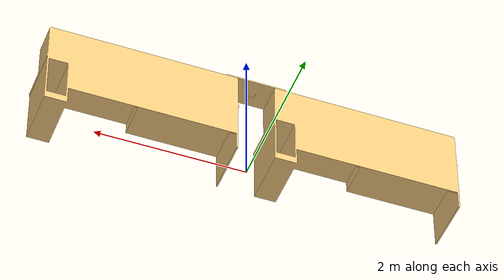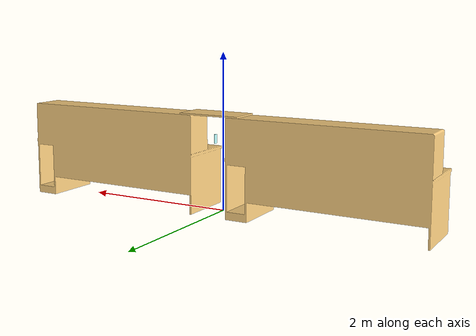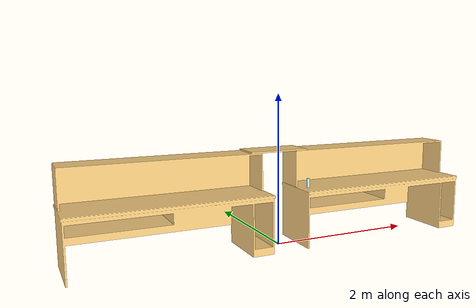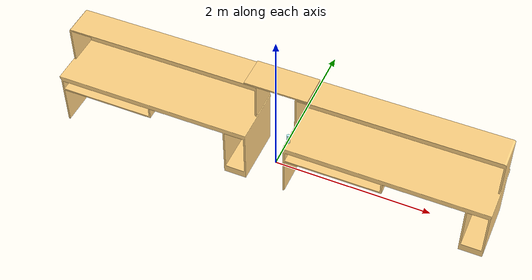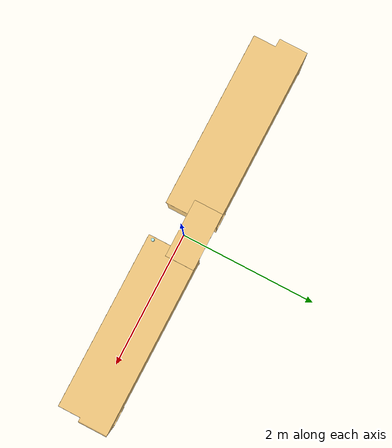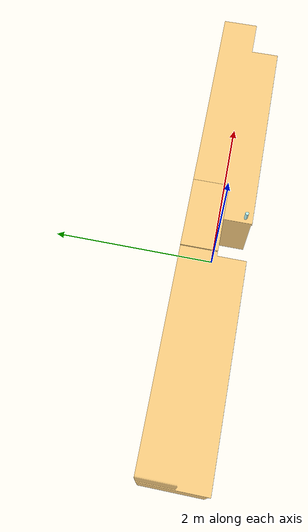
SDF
<sdf version='1.11'>
  <model name='table_bottle'>
    <joint name='table_joint' type='fixed'>
      <pose relative_to='__model__'>0 0 0 0 0 0</pose>
      <parent>world</parent>
      <child>table_top</child>
    </joint>
    <link name='table_top'>
      <pose relative_to='table_joint'>0 0 0 0 0 0</pose>
      <inertial>
        <pose>0.037556625273006503 0.1187234636742408 1.213559996214189 0 0 0</pose>
        <mass>4.3002000000000002</mass>
        <inertia>
          <ixx>0.21852720258128411</ixx>
          <ixy>0.057220156535226371</ixy>
          <ixz>0.04949839947141102</ixz>
          <iyy>0.3122479666049145</iyy>
          <iyz>-0.081760943047373025</iyz>
          <izz>0.38527938088341529</izz>
        </inertia>
      </inertial>
      <collision name='table_top_collision'>
        <pose>0 0 0 0 0 0</pose>
        <geometry>
          <mesh>
            <scale>1 1 1</scale>
            <uri>/home/maryam-mahmood/udaadbot_ws/src/daadbot_desc/meshes_lab_table/base_link.STL</uri>
          </mesh>
        </geometry>
      </collision>
      <collision name='table_top_fixed_joint_lump__bottle_link_collision_1'>
        <pose>0.28499999999999998 -0.28999999999999998 0.85999999999999999 0 0 0</pose>
        <geometry>
          <cylinder>
            <length>0.12</length>
            <radius>0.020000000000000003</radius>
          </cylinder>
        </geometry>
        <surface>
          <contact>
            <ode>
              <kp>100000</kp>
              <kd>10</kd>
              <min_depth>0.001</min_depth>
            </ode>
          </contact>
          <friction>
            <ode>
              <mu>0.80000000000000004</mu>
              <mu2>0.80000000000000004</mu2>
            </ode>
          </friction>
        </surface>
      </collision>
      <collision name='table_top_fixed_joint_lump__table_link1_collision_2'>
        <pose>0.0050000000000000001 0.17249999999999999 1.27 -1.5708 4.2351647362715017e-22 -3.1415853071795872</pose>
        <geometry>
          <mesh>
            <scale>1 1 1</scale>
            <uri>/home/maryam-mahmood/udaadbot_ws/src/daadbot_desc/meshes_lab_table/link1.STL</uri>
          </mesh>
        </geometry>
      </collision>
      <visual name='table_top_visual'>
        <pose>0 0 0 0 0 0</pose>
        <geometry>
          <mesh>
            <scale>1 1 1</scale>
            <uri>/home/maryam-mahmood/udaadbot_ws/src/daadbot_desc/meshes_lab_table/base_link.STL</uri>
          </mesh>
        </geometry>
        <material>
          <diffuse>1 0.825000048 0.512499988 1</diffuse>
          <ambient>1 0.825000048 0.512499988 1</ambient>
        </material>
      </visual>
      <visual name='table_top_fixed_joint_lump__bottle_link_visual_1'>
        <pose>0.28499999999999998 -0.28999999999999998 0.85999999999999999 0 0 0</pose>
        <geometry>
          <cylinder>
            <length>0.12</length>
            <radius>0.020000000000000003</radius>
          </cylinder>
        </geometry>
        <material>
          <diffuse>0.75000006 1 1 1</diffuse>
          <ambient>0.75000006 1 1 1</ambient>
        </material>
      </visual>
      <visual name='table_top_fixed_joint_lump__table_link1_visual_2'>
        <pose>0.0050000000000000001 0.17249999999999999 1.27 -1.5708 4.2351647362715017e-22 -3.1415853071795872</pose>
        <geometry>
          <mesh>
            <scale>1 1 1</scale>
            <uri>/home/maryam-mahmood/udaadbot_ws/src/daadbot_desc/meshes_lab_table/link1.STL</uri>
          </mesh>
        </geometry>
        <material>
          <diffuse>1 0.825000048 0.512499988 1</diffuse>
          <ambient>1 0.825000048 0.512499988 1</ambient>
        </material>
      </visual>
    </link>
    <frame name='bottle_joint' attached_to='table_top'>
      <pose>0.28499999999999998 -0.28999999999999998 0.75 0 0 0</pose>
    </frame>
    <frame name='bottle_link' attached_to='bottle_joint'>
      <pose>0 0 0 0 0 0</pose>
    </frame>
    <frame name='jnt1' attached_to='table_top'>
      <pose>0.0050000000000000001 0.17249999999999999 1.27 -1.5708 4.2351647362715017e-22 -3.1415853071795872</pose>
    </frame>
    <frame name='table_link1' attached_to='jnt1'>
      <pose>0 0 0 0 0 0</pose>
    </frame>
  </model>
</sdf>
